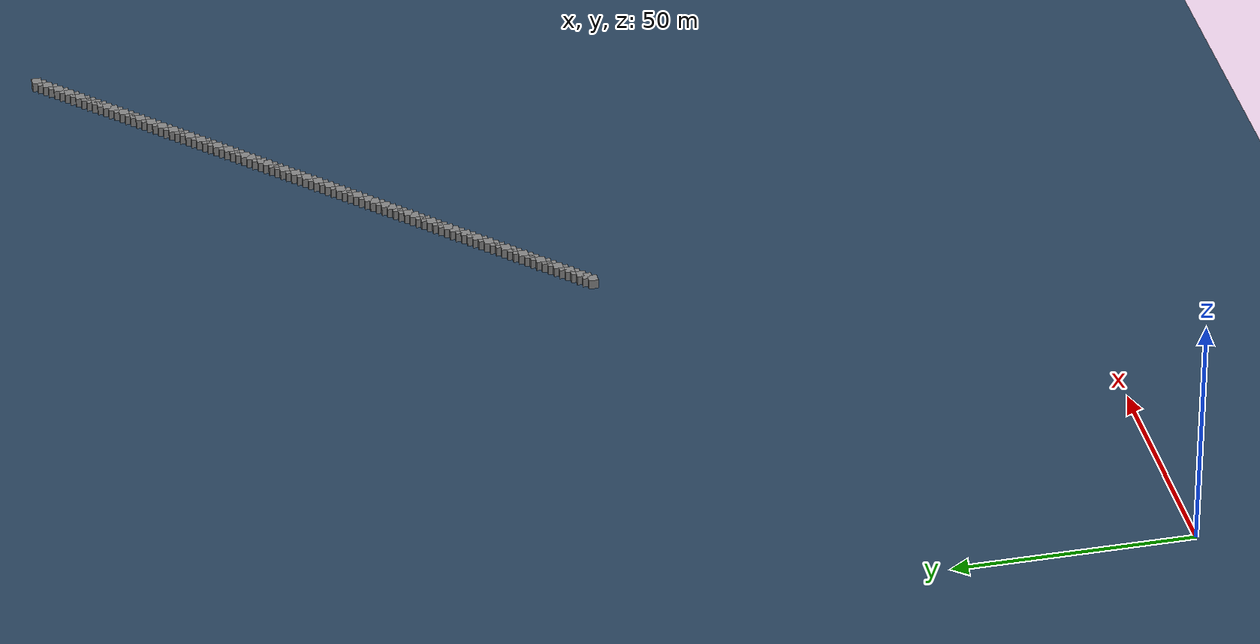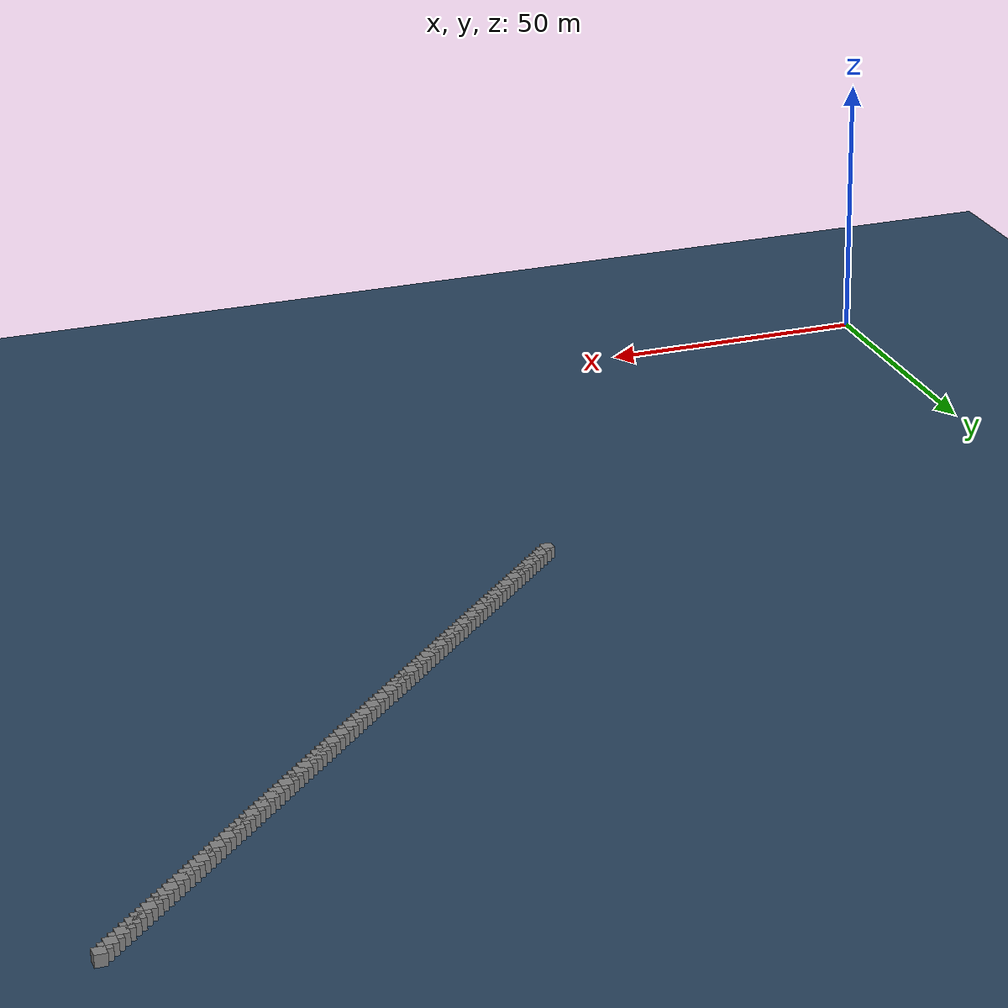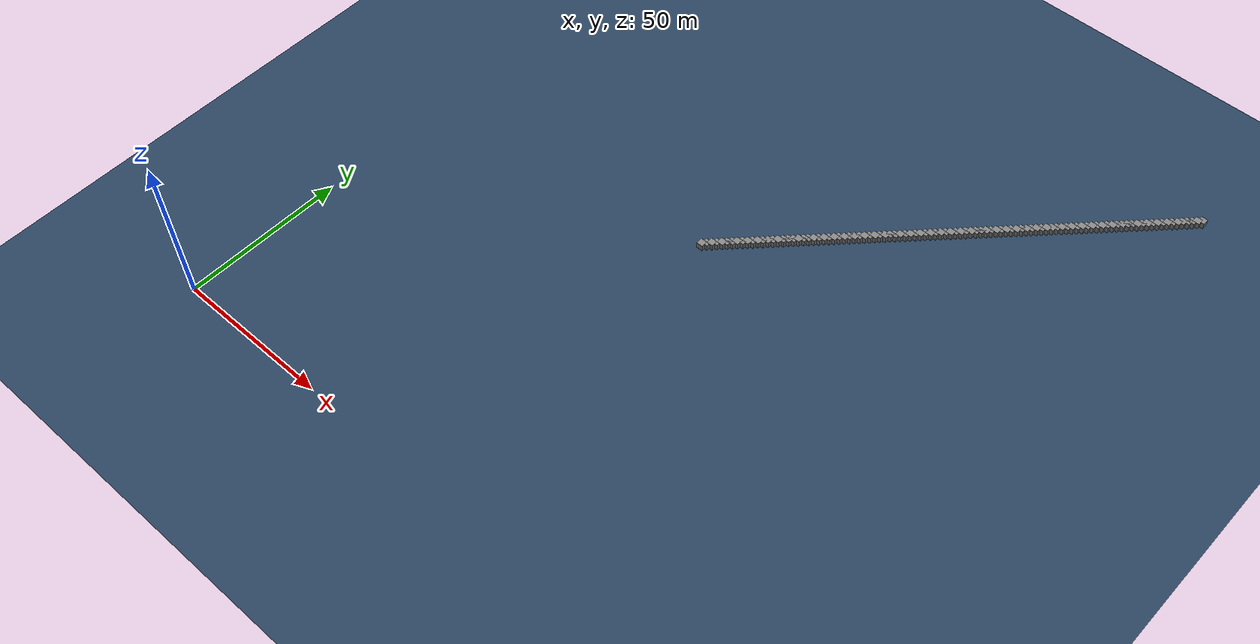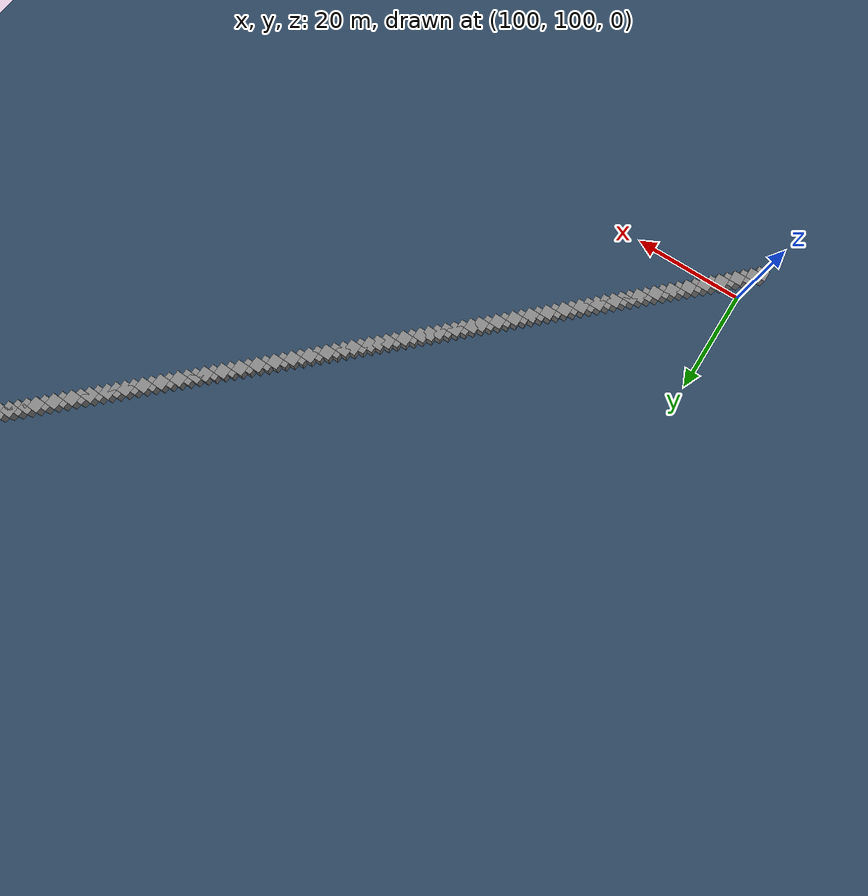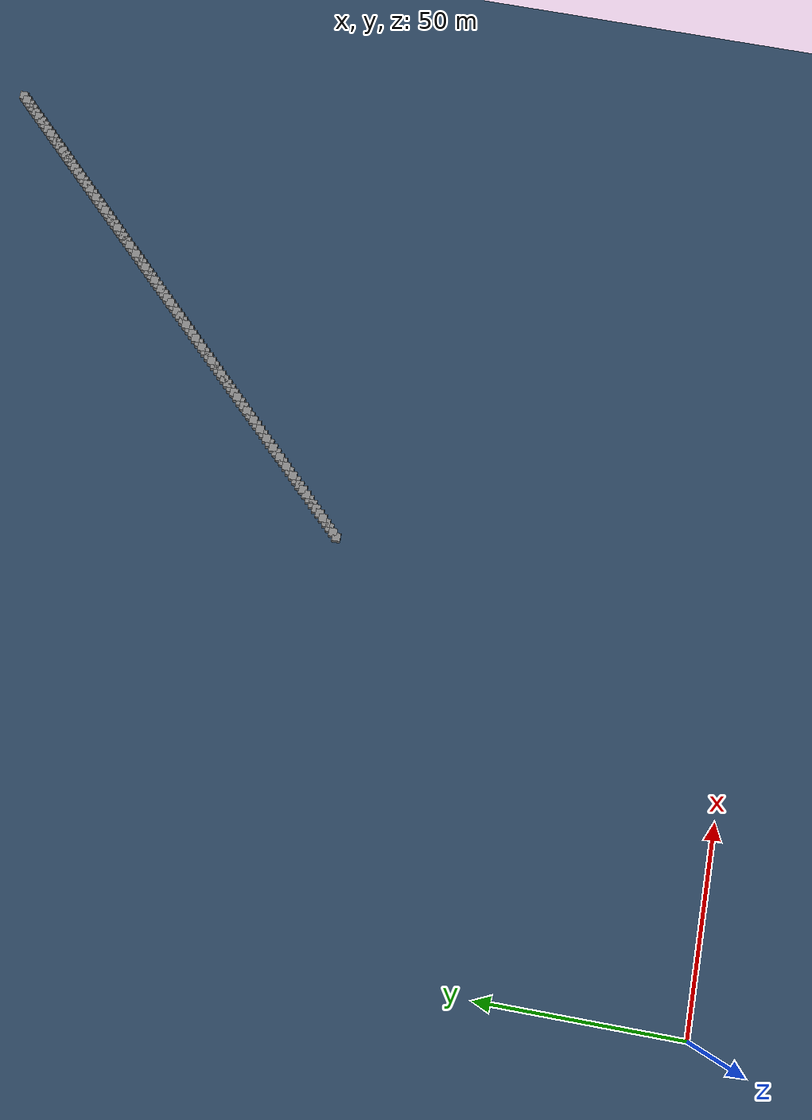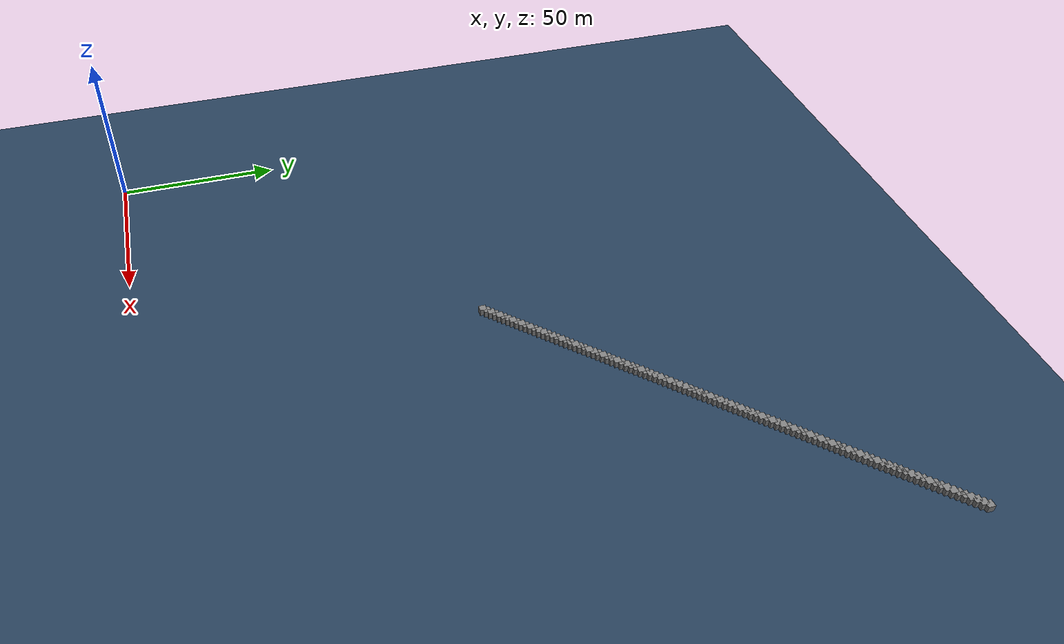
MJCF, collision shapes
<mujoco model="go2 scene">
  <include file="go2_mjx_feetonly.xml" />

  <statistic center="0 0 0.1" extent="0.8" />

  <visual>
    <headlight diffuse="0.6 0.6 0.6" ambient="0.3 0.3 0.3" specular="0 0 0" />
    <rgba haze="0.15 0.25 0.35 1" />
    <global azimuth="-130" elevation="-20" />
  </visual>

  <asset>
    <texture type="skybox" builtin="gradient" rgb1="0.3 0.5 0.7" rgb2="0 0 0" width="512" height="3072" />
    <texture type="2d" name="groundplane" builtin="checker" mark="edge" rgb1="0.2 0.3 0.4" rgb2="0.1 0.2 0.3" markrgb="0.8 0.8 0.8" width="300" height="300" />
    <material name="groundplane" texture="groundplane" texuniform="true" texrepeat="5 5" reflectance="0.2" />
  </asset>

  <worldbody>
    <light pos="0 0 1.5" dir="0 0 -1" directional="true" />
    <geom name="floor" pos="0 0 0" size="0 0 0.01" type="plane" contype="2" conaffinity="1" material="groundplane" />
  <body pos="100 100 10" quat="1.0 0.0 0.0 0.0" name="box_Or3UG"><geom type="box" size="1.0 1.0 1.0" contype="2" conaffinity="1" /></body><body pos="101 101 10" quat="1.0 0.0 0.0 0.0" name="box_wbTjW"><geom type="box" size="1.0 1.0 1.0" contype="2" conaffinity="1" /></body><body pos="102 102 10" quat="1.0 0.0 0.0 0.0" name="box_b91RC"><geom type="box" size="1.0 1.0 1.0" contype="2" conaffinity="1" /></body><body pos="103 103 10" quat="1.0 0.0 0.0 0.0" name="box_nDKFo"><geom type="box" size="1.0 1.0 1.0" contype="2" conaffinity="1" /></body><body pos="104 104 10" quat="1.0 0.0 0.0 0.0" name="box_a7zSv"><geom type="box" size="1.0 1.0 1.0" contype="2" conaffinity="1" /></body><body pos="105 105 10" quat="1.0 0.0 0.0 0.0" name="box_HmqPE"><geom type="box" size="1.0 1.0 1.0" contype="2" conaffinity="1" /></body><body pos="106 106 10" quat="1.0 0.0 0.0 0.0" name="box_SGRu8"><geom type="box" size="1.0 1.0 1.0" contype="2" conaffinity="1" /></body><body pos="107 107 10" quat="1.0 0.0 0.0 0.0" name="box_Ds95I"><geom type="box" size="1.0 1.0 1.0" contype="2" conaffinity="1" /></body><body pos="108 108 10" quat="1.0 0.0 0.0 0.0" name="box_04izu"><geom type="box" size="1.0 1.0 1.0" contype="2" conaffinity="1" /></body><body pos="109 109 10" quat="1.0 0.0 0.0 0.0" name="box_JEoyI"><geom type="box" size="1.0 1.0 1.0" contype="2" conaffinity="1" /></body><body pos="110 110 10" quat="1.0 0.0 0.0 0.0" name="box_FJGOD"><geom type="box" size="1.0 1.0 1.0" contype="2" conaffinity="1" /></body><body pos="111 111 10" quat="1.0 0.0 0.0 0.0" name="box_E1djL"><geom type="box" size="1.0 1.0 1.0" contype="2" conaffinity="1" /></body><body pos="112 112 10" quat="1.0 0.0 0.0 0.0" name="box_bWtq8"><geom type="box" size="1.0 1.0 1.0" contype="2" conaffinity="1" /></body><body pos="113 113 10" quat="1.0 0.0 0.0 0.0" name="box_TLiFu"><geom type="box" size="1.0 1.0 1.0" contype="2" conaffinity="1" /></body><body pos="114 114 10" quat="1.0 0.0 0.0 0.0" name="box_YnmoD"><geom type="box" size="1.0 1.0 1.0" contype="2" conaffinity="1" /></body><body pos="115 115 10" quat="1.0 0.0 0.0 0.0" name="box_zDf6B"><geom type="box" size="1.0 1.0 1.0" contype="2" conaffinity="1" /></body><body pos="116 116 10" quat="1.0 0.0 0.0 0.0" name="box_dIsMa"><geom type="box" size="1.0 1.0 1.0" contype="2" conaffinity="1" /></body><body pos="117 117 10" quat="1.0 0.0 0.0 0.0" name="box_qfO3k"><geom type="box" size="1.0 1.0 1.0" contype="2" conaffinity="1" /></body><body pos="118 118 10" quat="1.0 0.0 0.0 0.0" name="box_qYev1"><geom type="box" size="1.0 1.0 1.0" contype="2" conaffinity="1" /></body><body pos="119 119 10" quat="1.0 0.0 0.0 0.0" name="box_zYHen"><geom type="box" size="1.0 1.0 1.0" contype="2" conaffinity="1" /></body><body pos="120 120 10" quat="1.0 0.0 0.0 0.0" name="box_IIa7T"><geom type="box" size="1.0 1.0 1.0" contype="2" conaffinity="1" /></body><body pos="121 121 10" quat="1.0 0.0 0.0 0.0" name="box_9JTVt"><geom type="box" size="1.0 1.0 1.0" contype="2" conaffinity="1" /></body><body pos="122 122 10" quat="1.0 0.0 0.0 0.0" name="box_Ox5bR"><geom type="box" size="1.0 1.0 1.0" contype="2" conaffinity="1" /></body><body pos="123 123 10" quat="1.0 0.0 0.0 0.0" name="box_IMW0V"><geom type="box" size="1.0 1.0 1.0" contype="2" conaffinity="1" /></body><body pos="124 124 10" quat="1.0 0.0 0.0 0.0" name="box_Nj7XA"><geom type="box" size="1.0 1.0 1.0" contype="2" conaffinity="1" /></body><body pos="125 125 10" quat="1.0 0.0 0.0 0.0" name="box_SyRxj"><geom type="box" size="1.0 1.0 1.0" contype="2" conaffinity="1" /></body><body pos="126 126 10" quat="1.0 0.0 0.0 0.0" name="box_VXWzU"><geom type="box" size="1.0 1.0 1.0" contype="2" conaffinity="1" /></body><body pos="127 127 10" quat="1.0 0.0 0.0 0.0" name="box_XMgiN"><geom type="box" size="1.0 1.0 1.0" contype="2" conaffinity="1" /></body><body pos="128 128 10" quat="1.0 0.0 0.0 0.0" name="box_r8Hhu"><geom type="box" size="1.0 1.0 1.0" contype="2" conaffinity="1" /></body><body pos="129 129 10" quat="1.0 0.0 0.0 0.0" name="box_X3j4D"><geom type="box" size="1.0 1.0 1.0" contype="2" conaffinity="1" /></body><body pos="130 130 10" quat="1.0 0.0 0.0 0.0" name="box_2zzwN"><geom type="box" size="1.0 1.0 1.0" contype="2" conaffinity="1" /></body><body pos="131 131 10" quat="1.0 0.0 0.0 0.0" name="box_vLW2l"><geom type="box" size="1.0 1.0 1.0" contype="2" conaffinity="1" /></body><body pos="132 132 10" quat="1.0 0.0 0.0 0.0" name="box_qG1bU"><geom type="box" size="1.0 1.0 1.0" contype="2" conaffinity="1" /></body><body pos="133 133 10" quat="1.0 0.0 0.0 0.0" name="box_XsWxc"><geom type="box" size="1.0 1.0 1.0" contype="2" conaffinity="1" /></body><body pos="134 134 10" quat="1.0 0.0 0.0 0.0" name="box_Xp3zb"><geom type="box" size="1.0 1.0 1.0" contype="2" conaffinity="1" /></body><body pos="135 135 10" quat="1.0 0.0 0.0 0.0" name="box_Xqyvw"><geom type="box" size="1.0 1.0 1.0" contype="2" conaffinity="1" /></body><body pos="136 136 10" quat="1.0 0.0 0.0 0.0" name="box_mTx8e"><geom type="box" size="1.0 1.0 1.0" contype="2" conaffinity="1" /></body><body pos="137 137 10" quat="1.0 0.0 0.0 0.0" name="box_GXmTV"><geom type="box" size="1.0 1.0 1.0" contype="2" conaffinity="1" /></body><body pos="138 138 10" quat="1.0 0.0 0.0 0.0" name="box_IVNc4"><geom type="box" size="1.0 1.0 1.0" contype="2" conaffinity="1" /></body><body pos="139 139 10" quat="1.0 0.0 0.0 0.0" name="box_vwZMm"><geom type="box" size="1.0 1.0 1.0" contype="2" conaffinity="1" /></body><body pos="140 140 10" quat="1.0 0.0 0.0 0.0" name="box_7OEdw"><geom type="box" size="1.0 1.0 1.0" contype="2" conaffinity="1" /></body><body pos="141 141 10" quat="1.0 0.0 0.0 0.0" name="box_OlQHg"><geom type="box" size="1.0 1.0 1.0" contype="2" conaffinity="1" /></body><body pos="142 142 10" quat="1.0 0.0 0.0 0.0" name="box_khJNE"><geom type="box" size="1.0 1.0 1.0" contype="2" conaffinity="1" /></body><body pos="143 143 10" quat="1.0 0.0 0.0 0.0" name="box_yBcRz"><geom type="box" size="1.0 1.0 1.0" contype="2" conaffinity="1" /></body><body pos="144 144 10" quat="1.0 0.0 0.0 0.0" name="box_lUde6"><geom type="box" size="1.0 1.0 1.0" contype="2" conaffinity="1" /></body><body pos="145 145 10" quat="1.0 0.0 0.0 0.0" name="box_lCL19"><geom type="box" size="1.0 1.0 1.0" contype="2" conaffinity="1" /></body><body pos="146 146 10" quat="1.0 0.0 0.0 0.0" name="box_XNZCa"><geom type="box" size="1.0 1.0 1.0" contype="2" conaffinity="1" /></body><body pos="147 147 10" quat="1.0 0.0 0.0 0.0" name="box_BIch5"><geom type="box" size="1.0 1.0 1.0" contype="2" conaffinity="1" /></body><body pos="148 148 10" quat="1.0 0.0 0.0 0.0" name="box_zYikH"><geom type="box" size="1.0 1.0 1.0" contype="2" conaffinity="1" /></body><body pos="149 149 10" quat="1.0 0.0 0.0 0.0" name="box_XQTqM"><geom type="box" size="1.0 1.0 1.0" contype="2" conaffinity="1" /></body><body pos="150 150 10" quat="1.0 0.0 0.0 0.0" name="box_cPEmt"><geom type="box" size="1.0 1.0 1.0" contype="2" conaffinity="1" /></body><body pos="151 151 10" quat="1.0 0.0 0.0 0.0" name="box_vhtJb"><geom type="box" size="1.0 1.0 1.0" contype="2" conaffinity="1" /></body><body pos="152 152 10" quat="1.0 0.0 0.0 0.0" name="box_vllQ2"><geom type="box" size="1.0 1.0 1.0" contype="2" conaffinity="1" /></body><body pos="153 153 10" quat="1.0 0.0 0.0 0.0" name="box_ZJwmt"><geom type="box" size="1.0 1.0 1.0" contype="2" conaffinity="1" /></body><body pos="154 154 10" quat="1.0 0.0 0.0 0.0" name="box_8fppn"><geom type="box" size="1.0 1.0 1.0" contype="2" conaffinity="1" /></body><body pos="155 155 10" quat="1.0 0.0 0.0 0.0" name="box_WXQA9"><geom type="box" size="1.0 1.0 1.0" contype="2" conaffinity="1" /></body><body pos="156 156 10" quat="1.0 0.0 0.0 0.0" name="box_jvx4y"><geom type="box" size="1.0 1.0 1.0" contype="2" conaffinity="1" /></body><body pos="157 157 10" quat="1.0 0.0 0.0 0.0" name="box_S7UEy"><geom type="box" size="1.0 1.0 1.0" contype="2" conaffinity="1" /></body><body pos="158 158 10" quat="1.0 0.0 0.0 0.0" name="box_RNrGq"><geom type="box" size="1.0 1.0 1.0" contype="2" conaffinity="1" /></body><body pos="159 159 10" quat="1.0 0.0 0.0 0.0" name="box_GH9AB"><geom type="box" size="1.0 1.0 1.0" contype="2" conaffinity="1" /></body><body pos="160 160 10" quat="1.0 0.0 0.0 0.0" name="box_MAn94"><geom type="box" size="1.0 1.0 1.0" contype="2" conaffinity="1" /></body><body pos="161 161 10" quat="1.0 0.0 0.0 0.0" name="box_Sx8mi"><geom type="box" size="1.0 1.0 1.0" contype="2" conaffinity="1" /></body><body pos="162 162 10" quat="1.0 0.0 0.0 0.0" name="box_9e9cZ"><geom type="box" size="1.0 1.0 1.0" contype="2" conaffinity="1" /></body><body pos="163 163 10" quat="1.0 0.0 0.0 0.0" name="box_i202o"><geom type="box" size="1.0 1.0 1.0" contype="2" conaffinity="1" /></body><body pos="164 164 10" quat="1.0 0.0 0.0 0.0" name="box_S52BY"><geom type="box" size="1.0 1.0 1.0" contype="2" conaffinity="1" /></body><body pos="165 165 10" quat="1.0 0.0 0.0 0.0" name="box_z2J3Y"><geom type="box" size="1.0 1.0 1.0" contype="2" conaffinity="1" /></body><body pos="166 166 10" quat="1.0 0.0 0.0 0.0" name="box_yS8qN"><geom type="box" size="1.0 1.0 1.0" contype="2" conaffinity="1" /></body><body pos="167 167 10" quat="1.0 0.0 0.0 0.0" name="box_A06ob"><geom type="box" size="1.0 1.0 1.0" contype="2" conaffinity="1" /></body><body pos="168 168 10" quat="1.0 0.0 0.0 0.0" name="box_8WQNc"><geom type="box" size="1.0 1.0 1.0" contype="2" conaffinity="1" /></body><body pos="169 169 10" quat="1.0 0.0 0.0 0.0" name="box_3KBjK"><geom type="box" size="1.0 1.0 1.0" contype="2" conaffinity="1" /></body><body pos="170 170 10" quat="1.0 0.0 0.0 0.0" name="box_lZT5e"><geom type="box" size="1.0 1.0 1.0" contype="2" conaffinity="1" /></body><body pos="171 171 10" quat="1.0 0.0 0.0 0.0" name="box_0TunI"><geom type="box" size="1.0 1.0 1.0" contype="2" conaffinity="1" /></body><body pos="172 172 10" quat="1.0 0.0 0.0 0.0" name="box_tJP9h"><geom type="box" size="1.0 1.0 1.0" contype="2" conaffinity="1" /></body><body pos="173 173 10" quat="1.0 0.0 0.0 0.0" name="box_wvYTK"><geom type="box" size="1.0 1.0 1.0" contype="2" conaffinity="1" /></body><body pos="174 174 10" quat="1.0 0.0 0.0 0.0" name="box_0BDHj"><geom type="box" size="1.0 1.0 1.0" contype="2" conaffinity="1" /></body><body pos="175 175 10" quat="1.0 0.0 0.0 0.0" name="box_N56an"><geom type="box" size="1.0 1.0 1.0" contype="2" conaffinity="1" /></body><body pos="176 176 10" quat="1.0 0.0 0.0 0.0" name="box_tMcg3"><geom type="box" size="1.0 1.0 1.0" contype="2" conaffinity="1" /></body><body pos="177 177 10" quat="1.0 0.0 0.0 0.0" name="box_oz4xq"><geom type="box" size="1.0 1.0 1.0" contype="2" conaffinity="1" /></body><body pos="178 178 10" quat="1.0 0.0 0.0 0.0" name="box_5QRnZ"><geom type="box" size="1.0 1.0 1.0" contype="2" conaffinity="1" /></body><body pos="179 179 10" quat="1.0 0.0 0.0 0.0" name="box_3vB5D"><geom type="box" size="1.0 1.0 1.0" contype="2" conaffinity="1" /></body><body pos="180 180 10" quat="1.0 0.0 0.0 0.0" name="box_D7RCG"><geom type="box" size="1.0 1.0 1.0" contype="2" conaffinity="1" /></body><body pos="181 181 10" quat="1.0 0.0 0.0 0.0" name="box_nhNij"><geom type="box" size="1.0 1.0 1.0" contype="2" conaffinity="1" /></body><body pos="182 182 10" quat="1.0 0.0 0.0 0.0" name="box_KJgU4"><geom type="box" size="1.0 1.0 1.0" contype="2" conaffinity="1" /></body><body pos="183 183 10" quat="1.0 0.0 0.0 0.0" name="box_J4RmF"><geom type="box" size="1.0 1.0 1.0" contype="2" conaffinity="1" /></body><body pos="184 184 10" quat="1.0 0.0 0.0 0.0" name="box_cz9vB"><geom type="box" size="1.0 1.0 1.0" contype="2" conaffinity="1" /></body><body pos="185 185 10" quat="1.0 0.0 0.0 0.0" name="box_smyku"><geom type="box" size="1.0 1.0 1.0" contype="2" conaffinity="1" /></body><body pos="186 186 10" quat="1.0 0.0 0.0 0.0" name="box_VREWs"><geom type="box" size="1.0 1.0 1.0" contype="2" conaffinity="1" /></body><body pos="187 187 10" quat="1.0 0.0 0.0 0.0" name="box_3RKY0"><geom type="box" size="1.0 1.0 1.0" contype="2" conaffinity="1" /></body><body pos="188 188 10" quat="1.0 0.0 0.0 0.0" name="box_kR9hF"><geom type="box" size="1.0 1.0 1.0" contype="2" conaffinity="1" /></body><body pos="189 189 10" quat="1.0 0.0 0.0 0.0" name="box_M0CYY"><geom type="box" size="1.0 1.0 1.0" contype="2" conaffinity="1" /></body><body pos="190 190 10" quat="1.0 0.0 0.0 0.0" name="box_GLyjZ"><geom type="box" size="1.0 1.0 1.0" contype="2" conaffinity="1" /></body><body pos="191 191 10" quat="1.0 0.0 0.0 0.0" name="box_8NE49"><geom type="box" size="1.0 1.0 1.0" contype="2" conaffinity="1" /></body><body pos="192 192 10" quat="1.0 0.0 0.0 0.0" name="box_tkeHW"><geom type="box" size="1.0 1.0 1.0" contype="2" conaffinity="1" /></body><body pos="193 193 10" quat="1.0 0.0 0.0 0.0" name="box_zrliT"><geom type="box" size="1.0 1.0 1.0" contype="2" conaffinity="1" /></body><body pos="194 194 10" quat="1.0 0.0 0.0 0.0" name="box_iurB5"><geom type="box" size="1.0 1.0 1.0" contype="2" conaffinity="1" /></body><body pos="195 195 10" quat="1.0 0.0 0.0 0.0" name="box_Nlna9"><geom type="box" size="1.0 1.0 1.0" contype="2" conaffinity="1" /></body><body pos="196 196 10" quat="1.0 0.0 0.0 0.0" name="box_JXkBE"><geom type="box" size="1.0 1.0 1.0" contype="2" conaffinity="1" /></body><body pos="197 197 10" quat="1.0 0.0 0.0 0.0" name="box_kBod9"><geom type="box" size="1.0 1.0 1.0" contype="2" conaffinity="1" /></body><body pos="198 198 10" quat="1.0 0.0 0.0 0.0" name="box_Mv6Eb"><geom type="box" size="1.0 1.0 1.0" contype="2" conaffinity="1" /></body><body pos="199 199 10" quat="1.0 0.0 0.0 0.0" name="box_DhgPV"><geom type="box" size="1.0 1.0 1.0" contype="2" conaffinity="1" /></body></worldbody>
</mujoco>

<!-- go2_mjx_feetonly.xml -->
<mujoco model="go2">
  <compiler angle="radian" meshdir="assets" autolimits="true"/>

  <option cone="pyramidal" impratio="100" iterations="5" ls_iterations="5">
    <flag eulerdamp="disable"/>
  </option>
 <custom>
    <!-- Potentially optimal -->
    <!-- Safe-->
    <numeric data="4" name="max_contact_points"/>
    <numeric data="25" name="max_geom_pairs"/>
 </custom>
 <option iterations="5" ls_iterations="5" timestep="0.004" integrator="Euler">
    <flag eulerdamp="disable"/>
  </option>
  <default>
    <default class="go2">
      <geom friction="0.6" margin="0.001" condim="1" contype="0" conaffinity="0"/>

      <joint axis="0 1 0" damping="2" armature="0.01"/>
      <general forcerange="-24 24" biastype="affine" gainprm="50 0 0" biasprm="0 -50 -0.5"/>

      <default class="abduction">
        <joint axis="1 0 0" range="-1.0472 1.0472"/>
        <general ctrlrange="-0.9472 0.9472"/>
      </default>
      <default class="hip">
        <joint range="-1.5708 3.4907"/>
        <general ctrlrange="-1.4 2.5"/>
      </default>
      <default class="knee">
        <joint range="-2.7227 -0.83776"/>
        <general ctrlrange="-2.6227 -0.84776"/>
      </default>
      <default class="visual">
        <geom type="mesh" contype="0" conaffinity="0" group="2"/>
      </default>
      <default class="go2foot">
        <site group="1" pos="-0.002 0 -0.213"/>
        <geom rgba="0.231373 0.380392 0.705882 1"/>
      </default>
      <default class="collision">
        <geom group="3"/>
        <default class="foot">
          <geom type="sphere" size="0.0175" pos="-0.002 0 -0.213" solimp="0.015 1 0.031" contype="1" conaffinity="2" margin="-0.001"/>

        </default>
      </default>
    </default>
  </default>

  <asset>
    <material name="metal" rgba=".9 .95 .95 1"/>
    <material name="black" rgba="0 0 0 1"/>
    <material name="white" rgba="1 1 1 1"/>
    <material name="gray" rgba="0.671705 0.692426 0.774270 1"/>

    <mesh file="base_0.obj"/>
    <mesh file="base_1.obj"/>
    <mesh file="base_2.obj"/>
    <mesh file="base_3.obj"/>
    <mesh file="base_4.obj"/>
    <mesh file="hip_0.obj"/>
    <mesh file="hip_1.obj"/>
    <mesh file="thigh_0.obj"/>
    <mesh file="thigh_1.obj"/>
    <mesh file="thigh_mirror_0.obj"/>
    <mesh file="thigh_mirror_1.obj"/>
    <mesh file="calf_0.obj"/>
    <mesh file="calf_1.obj"/>
    <mesh file="calf_mirror_0.obj"/>
    <mesh file="calf_mirror_1.obj"/>
    <mesh file="foot.obj"/>
  </asset>

  <worldbody>
    <body name="base" pos="0 0 0.445" childclass="go2">
      <camera name="track" pos="0.846 -1.465 0.916" xyaxes="0.866 0.500 0.000 -0.171 0.296 0.940" mode="trackcom"/>
      <inertial pos="0.021112 0 -0.005366" quat="-0.000543471 0.713435 -0.00173769 0.700719" mass="6.921"
        diaginertia="0.107027 0.0980771 0.0244531"/>
      <freejoint/>
      <geom mesh="base_0" material="black" class="visual"/>
      <geom mesh="base_1" material="black" class="visual"/>
      <geom mesh="base_2" material="black" class="visual"/>
      <geom mesh="base_3" material="white" class="visual"/>
      <geom mesh="base_4" material="gray" class="visual"/>
      <geom size="0.057 0.04675 0.057" class="collision"/>
      <geom size="0.05 0.045" pos="0.285 0 0.01" class="collision"/>
      <geom size="0.047" pos="0.293 0 -0.06" class="collision"/>
      <site name="imu" pos="-0.02557 0 0.04232"/>
      <body name="FL_hip" pos="0.1934 0.0465 0">
        <inertial pos="-0.0054 0.00194 -0.000105" quat="0.497014 0.499245 0.505462 0.498237" mass="0.678"
          diaginertia="0.00088403 0.000596003 0.000479967"/>
        <joint name="FL_hip_joint" class="abduction"/>
        <geom mesh="hip_0" material="metal" class="visual"/>
        <geom mesh="hip_1" material="gray" class="visual"/>
        <geom size="0.046 0.02" pos="0 0.08 0" quat="1 1 0 0" class="collision"/>
        <body name="FL_thigh" pos="0 0.0955 0">
          <inertial pos="-0.00374 -0.0223 -0.0327" quat="0.829533 0.0847635 -0.0200632 0.551623" mass="1.152"
            diaginertia="0.00594973 0.00584149 0.000878787"/>
          <joint name="FL_thigh_joint" class="hip"/>
          <geom mesh="thigh_0" material="metal" class="visual"/>
          <geom mesh="thigh_1" material="gray" class="visual"/>
          <geom size="0.017 0.01225 0.017" pos="-0.015 0 -0.1955" quat="0.707107 0 0.707107 0" class="collision"/>
          <body name="FL_calf" pos="0 0 -0.213">
            <inertial pos="0.00629595 -0.000622121 -0.141417" quat="0.710672 0.00154099 -0.00450087 0.703508"
              mass="0.241352" diaginertia="0.0014901 0.00146356 5.31397e-05"/>
            <joint name="FL_calf_joint" class="knee"/>
            <geom mesh="calf_0" material="gray" class="visual"/>
            <geom mesh="calf_1" material="black" class="visual"/>
            <geom size="0.012 0.06" pos="0.008 0 -0.06" quat="0.994493 0 -0.104807 0" class="collision"/>
            <geom size="0.011 0.0325" pos="0.02 0 -0.148" quat="0.999688 0 0.0249974 0" class="collision"/>
            <geom pos="0 0 -0.213" mesh="foot" class="visual" material="black"/>
            <geom name="FL" class="foot"/>
            <site name="FL_foot" class="go2foot"/>
          </body>
        </body>
      </body>
      <body name="FR_hip" pos="0.1934 -0.0465 0">
        <inertial pos="-0.0054 -0.00194 -0.000105" quat="0.498237 0.505462 0.499245 0.497014" mass="0.678"
          diaginertia="0.00088403 0.000596003 0.000479967"/>
        <joint name="FR_hip_joint" class="abduction"/>
        <geom mesh="hip_0" material="metal" class="visual" quat="4.63268e-05 1 0 0"/>
        <geom mesh="hip_1" material="gray" class="visual" quat="4.63268e-05 1 0 0"/>
        <geom size="0.046 0.02" pos="0 -0.08 0" quat="0.707107 0.707107 0 0" class="collision"/>
        <body name="FR_thigh" pos="0 -0.0955 0">
          <inertial pos="-0.00374 0.0223 -0.0327" quat="0.551623 -0.0200632 0.0847635 0.829533" mass="1.152"
            diaginertia="0.00594973 0.00584149 0.000878787"/>
          <joint name="FR_thigh_joint" class="hip"/>
          <geom mesh="thigh_mirror_0" material="metal" class="visual"/>
          <geom mesh="thigh_mirror_1" material="gray" class="visual"/>
          <geom size="0.017 0.01225 0.017" pos="-0.015 0 -0.1955" quat="0.707107 0 0.707107 0" class="collision"/>
          <body name="FR_calf" pos="0 0 -0.213">
            <inertial pos="0.00629595 0.000622121 -0.141417" quat="0.703508 -0.00450087 0.00154099 0.710672"
              mass="0.241352" diaginertia="0.0014901 0.00146356 5.31397e-05"/>
            <joint name="FR_calf_joint" class="knee"/>
            <geom mesh="calf_mirror_0" material="gray" class="visual"/>
            <geom mesh="calf_mirror_1" material="black" class="visual"/>
            <geom size="0.013 0.06" pos="0.01 0 -0.06" quat="0.995004 0 -0.0998334 0" class="collision"/>
            <geom size="0.011 0.0325" pos="0.02 0 -0.148" quat="0.999688 0 0.0249974 0" class="collision"/>
            <geom pos="0 0 -0.213" mesh="foot" class="visual" material="black"/>
            <geom name="FR" class="foot"/>
            <site name="FR_foot" class="go2foot"/>
          </body>
        </body>
      </body>
      <body name="RL_hip" pos="-0.1934 0.0465 0">
        <inertial pos="0.0054 0.00194 -0.000105" quat="0.505462 0.498237 0.497014 0.499245" mass="0.678"
          diaginertia="0.00088403 0.000596003 0.000479967"/>
        <joint name="RL_hip_joint" class="abduction"/>
        <geom mesh="hip_0" material="metal" class="visual" quat="4.63268e-05 0 1 0"/>
        <geom mesh="hip_1" material="gray" class="visual" quat="4.63268e-05 0 1 0"/>
        <geom size="0.046 0.02" pos="0 0.08 0" quat="0.707107 0.707107 0 0" class="collision"/>
        <body name="RL_thigh" pos="0 0.0955 0">
          <inertial pos="-0.00374 -0.0223 -0.0327" quat="0.829533 0.0847635 -0.0200632 0.551623" mass="1.152"
            diaginertia="0.00594973 0.00584149 0.000878787"/>
          <joint name="RL_thigh_joint" class="hip"/>
          <geom mesh="thigh_0" material="metal" class="visual"/>
          <geom mesh="thigh_1" material="gray" class="visual"/>
          <geom size="0.017 0.01225 0.017" pos="-0.015 0 -0.1955" quat="0.707107 0 0.707107 0" class="collision"/>
          <body name="RL_calf" pos="0 0 -0.213">
            <inertial pos="0.00629595 -0.000622121 -0.141417" quat="0.710672 0.00154099 -0.00450087 0.703508"
              mass="0.241352" diaginertia="0.0014901 0.00146356 5.31397e-05"/>
            <joint name="RL_calf_joint" class="knee"/>
            <geom mesh="calf_0" material="gray" class="visual"/>
            <geom mesh="calf_1" material="black" class="visual"/>
            <geom size="0.013 0.06" pos="0.01 0 -0.06" quat="0.995004 0 -0.0998334 0" class="collision"/>
            <geom size="0.011 0.0325" pos="0.02 0 -0.148" quat="0.999688 0 0.0249974 0" class="collision"/>
            <geom pos="0 0 -0.213" mesh="foot" class="visual" material="black"/>
            <geom name="RL" class="foot"/>
            <site name="RL_foot" class="go2foot"/>
          </body>
        </body>
      </body>
      <body name="RR_hip" pos="-0.1934 -0.0465 0">
        <inertial pos="0.0054 -0.00194 -0.000105" quat="0.499245 0.497014 0.498237 0.505462" mass="0.678"
          diaginertia="0.00088403 0.000596003 0.000479967"/>
        <joint name="RR_hip_joint" class="abduction"/>
        <geom mesh="hip_0" material="metal" class="visual" quat="2.14617e-09 4.63268e-05 4.63268e-05 -1"/>
        <geom mesh="hip_1" material="gray" class="visual" quat="2.14617e-09 4.63268e-05 4.63268e-05 -1"/>
        <geom size="0.046 0.02" pos="0 -0.08 0" quat="0.707107 0.707107 0 0" class="collision"/>
        <body name="RR_thigh" pos="0 -0.0955 0">
          <inertial pos="-0.00374 0.0223 -0.0327" quat="0.551623 -0.0200632 0.0847635 0.829533" mass="1.152"
            diaginertia="0.00594973 0.00584149 0.000878787"/>
          <joint name="RR_thigh_joint" class="hip"/>
          <geom mesh="thigh_mirror_0" material="metal" class="visual"/>
          <geom mesh="thigh_mirror_1" material="gray" class="visual"/>
          <geom size="0.017 0.01225 0.017" pos="-0.015 0 -0.1955" quat="0.707107 0 0.707107 0" class="collision"/>
          <body name="RR_calf" pos="0 0 -0.213">
            <inertial pos="0.00629595 0.000622121 -0.141417" quat="0.703508 -0.00450087 0.00154099 0.710672"
              mass="0.241352" diaginertia="0.0014901 0.00146356 5.31397e-05"/>
            <joint name="RR_calf_joint" class="knee"/>
            <geom mesh="calf_mirror_0" material="gray" class="visual"/>
            <geom mesh="calf_mirror_1" material="black" class="visual"/>
            <geom size="0.013 0.06" pos="0.01 0 -0.06" quat="0.995004 0 -0.0998334 0" class="collision"/>
            <geom size="0.011 0.0325" pos="0.02 0 -0.148" quat="0.999688 0 0.0249974 0" class="collision"/>
            <geom pos="0 0 -0.213" mesh="foot" class="visual" material="black"/>
            <geom name="RR" class="foot"/>
            <site name="RR_foot" class="go2foot"/>
          </body>
        </body>
      </body>
    </body>
  </worldbody>

  <actuator>
    <position class="abduction" name="FR_hip" joint="FR_hip_joint"/>
    <position class="hip" name="FR_thigh" joint="FR_thigh_joint"/>
    <position class="knee" name="FR_calf" joint="FR_calf_joint"/>
    <position class="abduction" name="FL_hip" joint="FL_hip_joint"/>
    <position class="hip" name="FL_thigh" joint="FL_thigh_joint"/>
    <position class="knee" name="FL_calf" joint="FL_calf_joint"/>
    <position class="abduction" name="RR_hip" joint="RR_hip_joint"/>
    <position class="hip" name="RR_thigh" joint="RR_thigh_joint"/>
    <position class="knee" name="RR_calf" joint="RR_calf_joint"/>
    <position class="abduction" name="RL_hip" joint="RL_hip_joint"/>
    <position class="hip" name="RL_thigh" joint="RL_thigh_joint"/>
    <position class="knee" name="RL_calf" joint="RL_calf_joint"/>
  </actuator>

  <sensor>
    <gyro site="imu" name="gyro"/>
    <accelerometer site="imu" name="accelerometer"/>
    <framequat objtype="site" objname="imu" name="orientation"/>
    <framepos objtype="site" objname="imu" name="global_position"/>
    <framelinvel objtype="site" objname="imu" name="global_linvel"/>
    <frameangvel objtype="site" objname="imu" name="global_angvel"/>
    <!-- returns local velocity of robot -->
    <velocimeter site="imu" name="local_linvel"/>
    <framezaxis objtype="site" objname="imu" name="upvector"/>
    <framepos objtype="site" objname="FR_foot" name="FR_pos" reftype="site" refname="imu"/>
    <framepos objtype="site" objname="FL_foot" name="FL_pos" reftype="site" refname="imu"/>
    <framepos objtype="site" objname="RR_foot" name="RR_pos" reftype="site" refname="imu"/>
    <framepos objtype="site" objname="RL_foot" name="RL_pos" reftype="site" refname="imu"/>
    <framelinvel objtype="site" objname="FR_foot" name="FR_foot_global_linvel"/>
    <framelinvel objtype="site" objname="FL_foot" name="FL_foot_global_linvel"/>
    <framelinvel objtype="site" objname="RR_foot" name="RR_foot_global_linvel"/>
    <framelinvel objtype="site" objname="RL_foot" name="RL_foot_global_linvel"/>

  </sensor>
  <!-- short -->
  <keyframe>
    <key name="home" qpos="0 0 0.28 1 0 0 0 0 0.9 -1.8 0 0.9 -1.8 0 0.9 -1.8 0 0.9 -1.8"
      ctrl="0 0.9 -1.8 0 0.9 -1.8 0 0.9 -1.8 0 0.9 -1.8"/>
  </keyframe>
  <!-- tall -->
  <!-- other -->
</mujoco>
